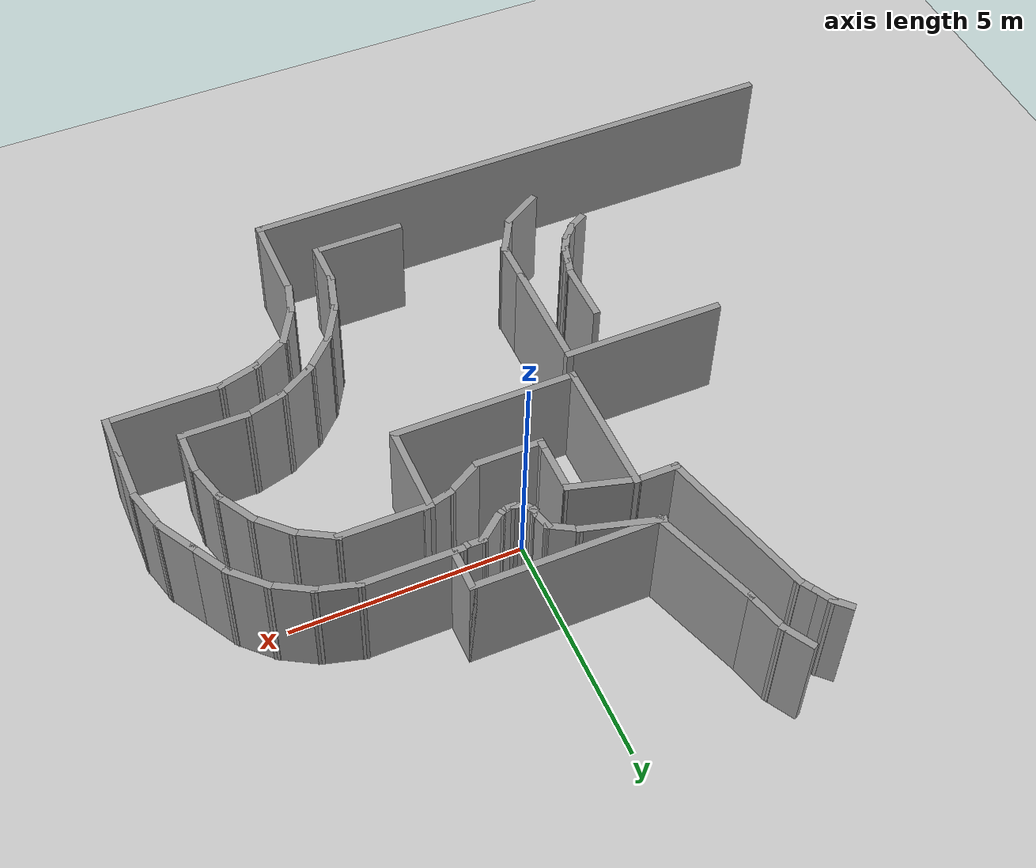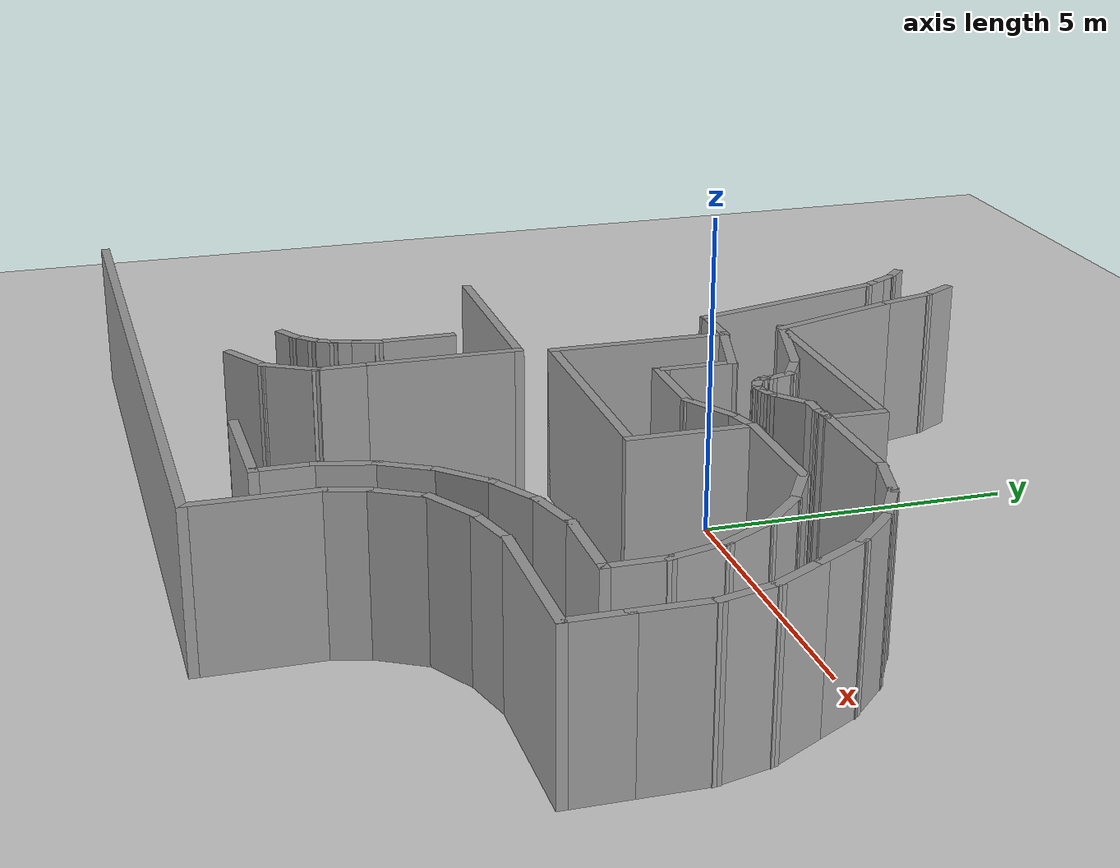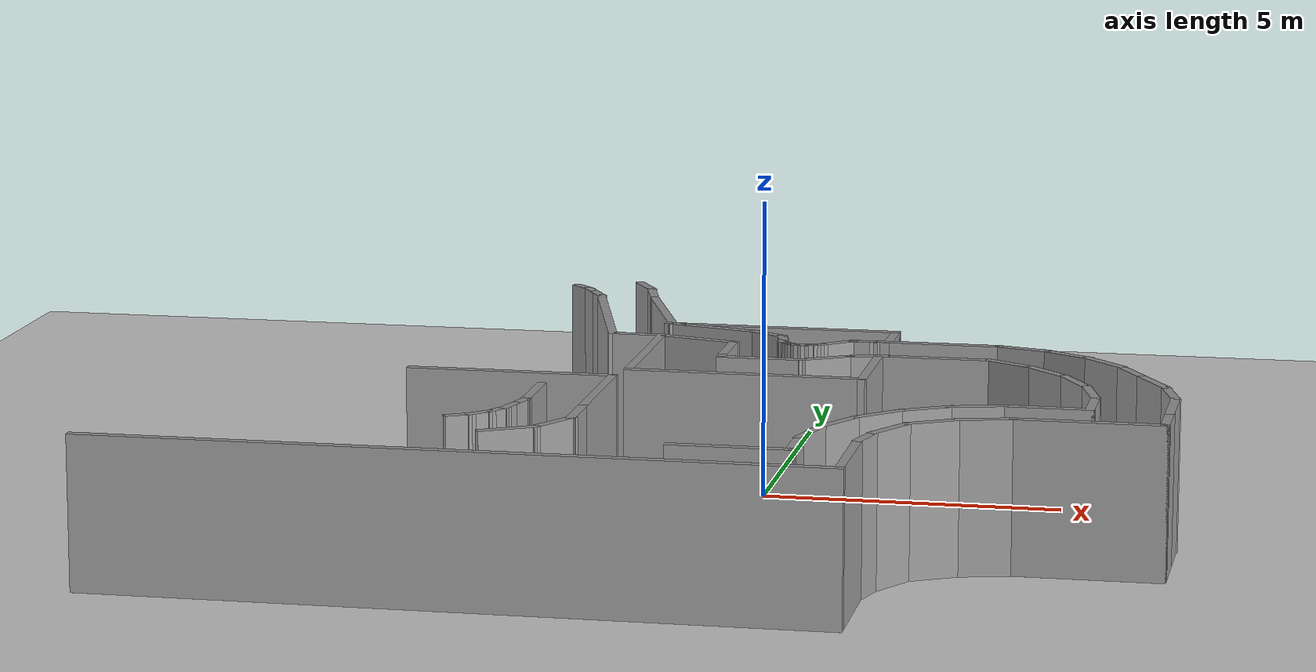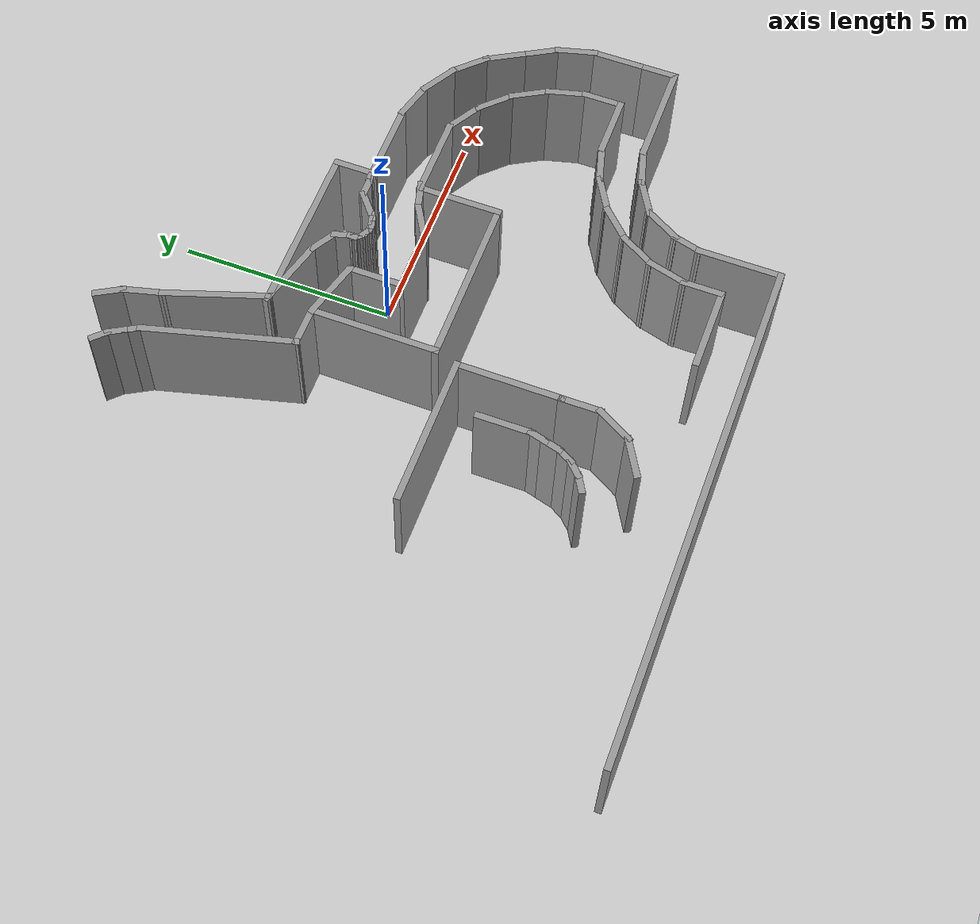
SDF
<sdf version="1.7">
 <world name="default">
  <model name="ground_plane">
   <static>1</static>
   <link name="link">
    <collision name="collision">
     <geometry><plane><normal>0 0 1</normal><size>100 100</size></plane></geometry>
     <surface><friction><ode><mu>100</mu><mu2>50</mu2></ode></friction></surface>
    </collision>
    <visual name="visual">
     <cast_shadows>0</cast_shadows>
     <geometry><plane><normal>0 0 1</normal><size>100 100</size></plane></geometry>
     <material>
      <script><uri>file://media/materials/scripts/gazebo.material</uri><name>Gazebo/Grey</name></script>
     </material>
    </visual>
   </link>
  </model>
  <model name="labirinth">
   <pose>-1.55942 0.15521 0 0 -0 0</pose>
   <link name="Wall_108">
    <collision name="Wall_108_Collision">
     <geometry><box><size>0.75 0.15 2.5</size></box></geometry>
     <pose>0 0 1.25 0 -0 0</pose>
    </collision>
    <visual name="Wall_108_Visual">
     <pose>0 0 1.25 0 -0 0</pose>
     <geometry><box><size>0.75 0.15 2.5</size></box></geometry>
     <material>
      <script><uri>file://media/materials/scripts/gazebo.material</uri><name>Gazebo/Grey</name></script>
      <ambient>1 1 1 1</ambient>
     </material>
     <meta><layer>0</layer></meta>
    </visual>
    <pose>-1.46149 5.03794 0 0 -0 -1.0472</pose>
   </link>
   <link name="Wall_109">
    <collision name="Wall_109_Collision">
     <geometry><box><size>1 0.15 2.5</size></box></geometry>
     <pose>0 0 1.25 0 -0 0</pose>
    </collision>
    <visual name="Wall_109_Visual">
     <pose>0 0 1.25 0 -0 0</pose>
     <geometry><box><size>1 0.15 2.5</size></box></geometry>
     <material>
      <script><uri>file://media/materials/scripts/gazebo.material</uri><name>Gazebo/Grey</name></script>
      <ambient>1 1 1 1</ambient>
     </material>
     <meta><layer>0</layer></meta>
    </visual>
    <pose>-1.20149 4.36761 0 0 -0 -1.309</pose>
   </link>
   <link name="Wall_11">
    <collision name="Wall_11_Collision">
     <geometry><box><size>1 0.15 2.5</size></box></geometry>
     <pose>0 0 1.25 0 -0 0</pose>
    </collision>
    <visual name="Wall_11_Visual">
     <pose>0 0 1.25 0 -0 0</pose>
     <geometry><box><size>1 0.15 2.5</size></box></geometry>
     <material>
      <script><uri>file://media/materials/scripts/gazebo.material</uri><name>Gazebo/Grey</name></script>
      <ambient>1 1 1 1</ambient>
     </material>
     <meta><layer>0</layer></meta>
    </visual>
    <pose>5.71748 -0.43771 0 0 -0 -0.523599</pose>
   </link>
   <link name="Wall_110">
    <collision name="Wall_110_Collision">
     <geometry><box><size>2.45465 0.15 2.5</size></box></geometry>
     <pose>0 0 1.25 0 -0 0</pose>
    </collision>
    <visual name="Wall_110_Visual">
     <pose>0 0 1.25 0 -0 0</pose>
     <geometry><box><size>2.45465 0.15 2.5</size></box></geometry>
     <material>
      <script><uri>file://media/materials/scripts/gazebo.material</uri><name>Gazebo/Grey</name></script>
      <ambient>1 1 1 1</ambient>
     </material>
     <meta><layer>0</layer></meta>
    </visual>
    <pose>-0.721037 2.86594 0 0 -0 -1.2435</pose>
   </link>
   <link name="Wall_112">
    <collision name="Wall_112_Collision">
     <geometry><box><size>3 0.15 2.5</size></box></geometry>
     <pose>0 0 1.25 0 -0 0</pose>
    </collision>
    <visual name="Wall_112_Visual">
     <pose>0 0 1.25 0 -0 0</pose>
     <geometry><box><size>3 0.15 2.5</size></box></geometry>
     <material>
      <script><uri>file://media/materials/scripts/gazebo.material</uri><name>Gazebo/Grey</name></script>
      <ambient>1 1 1 1</ambient>
     </material>
     <meta><layer>0</layer></meta>
    </visual>
    <pose>-0.350577 -0.65021 0 0 -0 1.5708</pose>
   </link>
   <link name="Wall_113">
    <collision name="Wall_113_Collision">
     <geometry><box><size>1 0.15 2.5</size></box></geometry>
     <pose>0 0 1.25 0 -0 0</pose>
    </collision>
    <visual name="Wall_113_Visual">
     <pose>0 0 1.25 0 -0 0</pose>
     <geometry><box><size>1 0.15 2.5</size></box></geometry>
     <material>
      <script><uri>file://media/materials/scripts/gazebo.material</uri><name>Gazebo/Grey</name></script>
      <ambient>1 1 1 1</ambient>
     </material>
     <meta><layer>0</layer></meta>
    </visual>
    <pose>-0.775577 0.77479 0 0 -0 3.14159</pose>
   </link>
   <link name="Wall_114">
    <collision name="Wall_114_Collision">
     <geometry><box><size>3.5 0.15 2.5</size></box></geometry>
     <pose>0 0 1.25 0 -0 0</pose>
    </collision>
    <visual name="Wall_114_Visual">
     <pose>0 0 1.25 0 -0 0</pose>
     <geometry><box><size>3.5 0.15 2.5</size></box></geometry>
     <material>
      <script><uri>file://media/materials/scripts/gazebo.material</uri><name>Gazebo/Grey</name></script>
      <ambient>1 1 1 1</ambient>
     </material>
     <meta><layer>0</layer></meta>
    </visual>
    <pose>-1.6341 2.39272 0 0 -0 1.8326</pose>
   </link>
   <link name="Wall_115">
    <collision name="Wall_115_Collision">
     <geometry><box><size>0.5 0.15 2.5</size></box></geometry>
     <pose>0 0 1.25 0 -0 0</pose>
    </collision>
    <visual name="Wall_115_Visual">
     <pose>0 0 1.25 0 -0 0</pose>
     <geometry><box><size>0.5 0.15 2.5</size></box></geometry>
     <material>
      <script><uri>file://media/materials/scripts/gazebo.material</uri><name>Gazebo/Grey</name></script>
      <ambient>1 1 1 1</ambient>
     </material>
     <meta><layer>0</layer></meta>
    </visual>
    <pose>-2.15512 4.1622 0 0 -0 2.0944</pose>
   </link>
   <link name="Wall_116">
    <collision name="Wall_116_Collision">
     <geometry><box><size>0.5 0.15 2.5</size></box></geometry>
     <pose>0 0 1.25 0 -0 0</pose>
    </collision>
    <visual name="Wall_116_Visual">
     <pose>0 0 1.25 0 -0 0</pose>
     <geometry><box><size>0.5 0.15 2.5</size></box></geometry>
     <material>
      <script><uri>file://media/materials/scripts/gazebo.material</uri><name>Gazebo/Grey</name></script>
      <ambient>1 1 1 1</ambient>
     </material>
     <meta><layer>0</layer></meta>
    </visual>
    <pose>-2.33012 4.4653 0 0 -0 2.0944</pose>
   </link>
   <link name="Wall_117">
    <collision name="Wall_117_Collision">
     <geometry><box><size>0.5 0.15 2.5</size></box></geometry>
     <pose>0 0 1.25 0 -0 0</pose>
    </collision>
    <visual name="Wall_117_Visual">
     <pose>0 0 1.25 0 -0 0</pose>
     <geometry><box><size>0.5 0.15 2.5</size></box></geometry>
     <material>
      <script><uri>file://media/materials/scripts/gazebo.material</uri><name>Gazebo/Grey</name></script>
      <ambient>1 1 1 1</ambient>
     </material>
     <meta><layer>0</layer></meta>
    </visual>
    <pose>-2.54136 4.7406 0 0 -0 2.35619</pose>
   </link>
   <link name="Wall_12">
    <collision name="Wall_12_Collision">
     <geometry><box><size>1 0.15 2.5</size></box></geometry>
     <pose>0 0 1.25 0 -0 0</pose>
    </collision>
    <visual name="Wall_12_Visual">
     <pose>0 0 1.25 0 -0 0</pose>
     <geometry><box><size>1 0.15 2.5</size></box></geometry>
     <material>
      <script><uri>file://media/materials/scripts/gazebo.material</uri><name>Gazebo/Grey</name></script>
      <ambient>1 1 1 1</ambient>
     </material>
     <meta><layer>0</layer></meta>
    </visual>
    <pose>6.38607 -0.95073 0 0 -0 -0.785398</pose>
   </link>
   <link name="Wall_13">
    <collision name="Wall_13_Collision">
     <geometry><box><size>1 0.15 2.5</size></box></geometry>
     <pose>0 0 1.25 0 -0 0</pose>
    </collision>
    <visual name="Wall_13_Visual">
     <pose>0 0 1.25 0 -0 0</pose>
     <geometry><box><size>1 0.15 2.5</size></box></geometry>
     <material>
      <script><uri>file://media/materials/scripts/gazebo.material</uri><name>Gazebo/Grey</name></script>
      <ambient>1 1 1 1</ambient>
     </material>
     <meta><layer>0</layer></meta>
    </visual>
    <pose>6.89909 -1.61931 0 0 -0 -1.0472</pose>
   </link>
   <link name="Wall_14">
    <collision name="Wall_14_Collision">
     <geometry><box><size>1 0.15 2.5</size></box></geometry>
     <pose>0 0 1.25 0 -0 0</pose>
    </collision>
    <visual name="Wall_14_Visual">
     <pose>0 0 1.25 0 -0 0</pose>
     <geometry><box><size>1 0.15 2.5</size></box></geometry>
     <material>
      <script><uri>file://media/materials/scripts/gazebo.material</uri><name>Gazebo/Grey</name></script>
      <ambient>1 1 1 1</ambient>
     </material>
     <meta><layer>0</layer></meta>
    </visual>
    <pose>7.22158 -2.39789 0 0 -0 -1.309</pose>
   </link>
   <link name="Wall_15">
    <collision name="Wall_15_Collision">
     <geometry><box><size>1 0.15 2.5</size></box></geometry>
     <pose>0 0 1.25 0 -0 0</pose>
    </collision>
    <visual name="Wall_15_Visual">
     <pose>0 0 1.25 0 -0 0</pose>
     <geometry><box><size>1 0.15 2.5</size></box></geometry>
     <material>
      <script><uri>file://media/materials/scripts/gazebo.material</uri><name>Gazebo/Grey</name></script>
      <ambient>1 1 1 1</ambient>
     </material>
     <meta><layer>0</layer></meta>
    </visual>
    <pose>7.33158 -3.23341 0 0 -0 -1.5708</pose>
   </link>
   <link name="Wall_16">
    <collision name="Wall_16_Collision">
     <geometry><box><size>1.5 0.15 2.5</size></box></geometry>
     <pose>0 0 1.25 0 -0 0</pose>
    </collision>
    <visual name="Wall_16_Visual">
     <pose>0 0 1.25 0 -0 0</pose>
     <geometry><box><size>1.5 0.15 2.5</size></box></geometry>
     <material>
      <script><uri>file://media/materials/scripts/gazebo.material</uri><name>Gazebo/Grey</name></script>
      <ambient>1 1 1 1</ambient>
     </material>
     <meta><layer>0</layer></meta>
    </visual>
    <pose>6.65658 -3.65841 0 0 -0 3.14159</pose>
   </link>
   <link name="Wall_17">
    <collision name="Wall_17_Collision">
     <geometry><box><size>1 0.15 2.5</size></box></geometry>
     <pose>0 0 1.25 0 -0 0</pose>
    </collision>
    <visual name="Wall_17_Visual">
     <pose>0 0 1.25 0 -0 0</pose>
     <geometry><box><size>1 0.15 2.5</size></box></geometry>
     <material>
      <script><uri>file://media/materials/scripts/gazebo.material</uri><name>Gazebo/Grey</name></script>
      <ambient>1 1 1 1</ambient>
     </material>
     <meta><layer>0</layer></meta>
    </visual>
    <pose>5.57106 -3.76841 0 0 -0 -2.87979</pose>
   </link>
   <link name="Wall_18">
    <collision name="Wall_18_Collision">
     <geometry><box><size>1 0.15 2.5</size></box></geometry>
     <pose>0 0 1.25 0 -0 0</pose>
    </collision>
    <visual name="Wall_18_Visual">
     <pose>0 0 1.25 0 -0 0</pose>
     <geometry><box><size>1 0.15 2.5</size></box></geometry>
     <material>
      <script><uri>file://media/materials/scripts/gazebo.material</uri><name>Gazebo/Grey</name></script>
      <ambient>1 1 1 1</ambient>
     </material>
     <meta><layer>0</layer></meta>
    </visual>
    <pose>4.79248 -4.09091 0 0 -0 -2.61799</pose>
   </link>
   <link name="Wall_19">
    <collision name="Wall_19_Collision">
     <geometry><box><size>1 0.15 2.5</size></box></geometry>
     <pose>0 0 1.25 0 -0 0</pose>
    </collision>
    <visual name="Wall_19_Visual">
     <pose>0 0 1.25 0 -0 0</pose>
     <geometry><box><size>1 0.15 2.5</size></box></geometry>
     <material>
      <script><uri>file://media/materials/scripts/gazebo.material</uri><name>Gazebo/Grey</name></script>
      <ambient>1 1 1 1</ambient>
     </material>
     <meta><layer>0</layer></meta>
    </visual>
    <pose>4.1239 -4.60393 0 0 -0 -2.35619</pose>
   </link>
   <link name="Wall_2">
    <collision name="Wall_2_Collision">
     <geometry><box><size>4 0.15 2.5</size></box></geometry>
     <pose>0 0 1.25 0 -0 0</pose>
    </collision>
    <visual name="Wall_2_Visual">
     <pose>0 0 1.25 0 -0 0</pose>
     <geometry><box><size>4 0.15 2.5</size></box></geometry>
     <material>
      <script><uri>file://media/materials/scripts/gazebo.material</uri><name>Gazebo/Grey</name></script>
      <ambient>1 1 1 1</ambient>
     </material>
     <meta><layer>0</layer></meta>
    </visual>
    <pose>1.57442 1.77479 0 0 -0 0</pose>
   </link>
   <link name="Wall_20">
    <collision name="Wall_20_Collision">
     <geometry><box><size>1 0.15 2.5</size></box></geometry>
     <pose>0 0 1.25 0 -0 0</pose>
    </collision>
    <visual name="Wall_20_Visual">
     <pose>0 0 1.25 0 -0 0</pose>
     <geometry><box><size>1 0.15 2.5</size></box></geometry>
     <material>
      <script><uri>file://media/materials/scripts/gazebo.material</uri><name>Gazebo/Grey</name></script>
      <ambient>1 1 1 1</ambient>
     </material>
     <meta><layer>0</layer></meta>
    </visual>
    <pose>3.61088 -5.27251 0 0 -0 -2.0944</pose>
   </link>
   <link name="Wall_21">
    <collision name="Wall_21_Collision">
     <geometry><box><size>1 0.15 2.5</size></box></geometry>
     <pose>0 0 1.25 0 -0 0</pose>
    </collision>
    <visual name="Wall_21_Visual">
     <pose>0 0 1.25 0 -0 0</pose>
     <geometry><box><size>1 0.15 2.5</size></box></geometry>
     <material>
      <script><uri>file://media/materials/scripts/gazebo.material</uri><name>Gazebo/Grey</name></script>
      <ambient>1 1 1 1</ambient>
     </material>
     <meta><layer>0</layer></meta>
    </visual>
    <pose>3.28838 -6.05109 0 0 -0 -1.8326</pose>
   </link>
   <link name="Wall_22">
    <collision name="Wall_22_Collision">
     <geometry><box><size>1 0.15 2.5</size></box></geometry>
     <pose>0 0 1.25 0 -0 0</pose>
    </collision>
    <visual name="Wall_22_Visual">
     <pose>0 0 1.25 0 -0 0</pose>
     <geometry><box><size>1 0.15 2.5</size></box></geometry>
     <material>
      <script><uri>file://media/materials/scripts/gazebo.material</uri><name>Gazebo/Grey</name></script>
      <ambient>1 1 1 1</ambient>
     </material>
     <meta><layer>0</layer></meta>
    </visual>
    <pose>3.17839 -6.8866 0 0 -0 -1.5708</pose>
   </link>
   <link name="Wall_23">
    <collision name="Wall_23_Collision">
     <geometry><box><size>2 0.15 2.5</size></box></geometry>
     <pose>0 0 1.25 0 -0 0</pose>
    </collision>
    <visual name="Wall_23_Visual">
     <pose>0 0 1.25 0 -0 0</pose>
     <geometry><box><size>2 0.15 2.5</size></box></geometry>
     <material>
      <script><uri>file://media/materials/scripts/gazebo.material</uri><name>Gazebo/Grey</name></script>
      <ambient>1 1 1 1</ambient>
     </material>
     <meta><layer>0</layer></meta>
    </visual>
    <pose>2.25339 -7.3116 0 0 -0 3.14159</pose>
   </link>
   <link name="Wall_27">
    <collision name="Wall_27_Collision">
     <geometry><box><size>1 0.15 2.5</size></box></geometry>
     <pose>0 0 1.25 0 -0 0</pose>
    </collision>
    <visual name="Wall_27_Visual">
     <pose>0 0 1.25 0 -0 0</pose>
     <geometry><box><size>1 0.15 2.5</size></box></geometry>
     <material>
      <script><uri>file://media/materials/scripts/gazebo.material</uri><name>Gazebo/Grey</name></script>
      <ambient>1 1 1 1</ambient>
     </material>
     <meta><layer>0</layer></meta>
    </visual>
    <pose>-1.30355 -6.7491 0 0 -0 0.523599</pose>
   </link>
   <link name="Wall_28">
    <collision name="Wall_28_Collision">
     <geometry><box><size>1 0.15 2.5</size></box></geometry>
     <pose>0 0 1.25 0 -0 0</pose>
    </collision>
    <visual name="Wall_28_Visual">
     <pose>0 0 1.25 0 -0 0</pose>
     <geometry><box><size>1 0.15 2.5</size></box></geometry>
     <material>
      <script><uri>file://media/materials/scripts/gazebo.material</uri><name>Gazebo/Grey</name></script>
      <ambient>1 1 1 1</ambient>
     </material>
     <meta><layer>0</layer></meta>
    </visual>
    <pose>-0.722992 -6.16854 0 0 -0 1.0472</pose>
   </link>
   <link name="Wall_29">
    <collision name="Wall_29_Collision">
     <geometry><box><size>1 0.15 2.5</size></box></geometry>
     <pose>0 0 1.25 0 -0 0</pose>
    </collision>
    <visual name="Wall_29_Visual">
     <pose>0 0 1.25 0 -0 0</pose>
     <geometry><box><size>1 0.15 2.5</size></box></geometry>
     <material>
      <script><uri>file://media/materials/scripts/gazebo.material</uri><name>Gazebo/Grey</name></script>
      <ambient>1 1 1 1</ambient>
     </material>
     <meta><layer>0</layer></meta>
    </visual>
    <pose>-0.510492 -5.37548 0 0 -0 1.5708</pose>
   </link>
   <link name="Wall_3">
    <collision name="Wall_3_Collision">
     <geometry><box><size>1 0.15 2.5</size></box></geometry>
     <pose>0 0 1.25 0 -0 0</pose>
    </collision>
    <visual name="Wall_3_Visual">
     <pose>0 0 1.25 0 -0 0</pose>
     <geometry><box><size>1 0.15 2.5</size></box></geometry>
     <material>
      <script><uri>file://media/materials/scripts/gazebo.material</uri><name>Gazebo/Grey</name></script>
      <ambient>1 1 1 1</ambient>
     </material>
     <meta><layer>0</layer></meta>
    </visual>
    <pose>3.49942 1.34979 0 0 -0 -1.5708</pose>
   </link>
   <link name="Wall_30">
    <collision name="Wall_30_Collision">
     <geometry><box><size>2.5 0.15 2.5</size></box></geometry>
     <pose>0 0 1.25 0 -0 0</pose>
    </collision>
    <visual name="Wall_30_Visual">
     <pose>0 0 1.25 0 -0 0</pose>
     <geometry><box><size>2.5 0.15 2.5</size></box></geometry>
     <material>
      <script><uri>file://media/materials/scripts/gazebo.material</uri><name>Gazebo/Grey</name></script>
      <ambient>1 1 1 1</ambient>
     </material>
     <meta><layer>0</layer></meta>
    </visual>
    <pose>-0.510492 -3.77548 0 0 -0 1.5708</pose>
   </link>
   <link name="Wall_31">
    <collision name="Wall_31_Collision">
     <geometry><box><size>3.5 0.15 2.5</size></box></geometry>
     <pose>0 0 1.25 0 -0 0</pose>
    </collision>
    <visual name="Wall_31_Visual">
     <pose>0 0 1.25 0 -0 0</pose>
     <geometry><box><size>3.5 0.15 2.5</size></box></geometry>
     <material>
      <script><uri>file://media/materials/scripts/gazebo.material</uri><name>Gazebo/Grey</name></script>
      <ambient>1 1 1 1</ambient>
     </material>
     <meta><layer>0</layer></meta>
    </visual>
    <pose>-2.18549 -2.60048 0 0 -0 3.14159</pose>
   </link>
   <link name="Wall_37">
    <collision name="Wall_37_Collision">
     <geometry><box><size>1 0.15 2.5</size></box></geometry>
     <pose>0 0 1.25 0 -0 0</pose>
    </collision>
    <visual name="Wall_37_Visual">
     <pose>0 0 1.25 0 -0 0</pose>
     <geometry><box><size>1 0.15 2.5</size></box></geometry>
     <material>
      <script><uri>file://media/materials/scripts/gazebo.material</uri><name>Gazebo/Grey</name></script>
      <ambient>1 1 1 1</ambient>
     </material>
     <meta><layer>0</layer></meta>
    </visual>
    <pose>5.75994 0.814792 0 0 -0 -0.261799</pose>
   </link>
   <link name="Wall_38">
    <collision name="Wall_38_Collision">
     <geometry><box><size>1 0.15 2.5</size></box></geometry>
     <pose>0 0 1.25 0 -0 0</pose>
    </collision>
    <visual name="Wall_38_Visual">
     <pose>0 0 1.25 0 -0 0</pose>
     <geometry><box><size>1 0.15 2.5</size></box></geometry>
     <material>
      <script><uri>file://media/materials/scripts/gazebo.material</uri><name>Gazebo/Grey</name></script>
      <ambient>1 1 1 1</ambient>
     </material>
     <meta><layer>0</layer></meta>
    </visual>
    <pose>6.53852 0.492294 0 0 -0 -0.523599</pose>
   </link>
   <link name="Wall_39">
    <collision name="Wall_39_Collision">
     <geometry><box><size>1 0.15 2.5</size></box></geometry>
     <pose>0 0 1.25 0 -0 0</pose>
    </collision>
    <visual name="Wall_39_Visual">
     <pose>0 0 1.25 0 -0 0</pose>
     <geometry><box><size>1 0.15 2.5</size></box></geometry>
     <material>
      <script><uri>file://media/materials/scripts/gazebo.material</uri><name>Gazebo/Grey</name></script>
      <ambient>1 1 1 1</ambient>
     </material>
     <meta><layer>0</layer></meta>
    </visual>
    <pose>7.2071 -0.020726 0 0 -0 -0.785398</pose>
   </link>
   <link name="Wall_4">
    <collision name="Wall_4_Collision">
     <geometry><box><size>2 0.15 2.5</size></box></geometry>
     <pose>0 0 1.25 0 -0 0</pose>
    </collision>
    <visual name="Wall_4_Visual">
     <pose>0 0 1.25 0 -0 0</pose>
     <geometry><box><size>2 0.15 2.5</size></box></geometry>
     <material>
      <script><uri>file://media/materials/scripts/gazebo.material</uri><name>Gazebo/Grey</name></script>
      <ambient>1 1 1 1</ambient>
     </material>
     <meta><layer>0</layer></meta>
    </visual>
    <pose>4.42442 0.924791 0 0 -0 0</pose>
   </link>
   <link name="Wall_43">
    <collision name="Wall_43_Collision">
     <geometry><box><size>1 0.15 2.5</size></box></geometry>
     <pose>0 0 1.25 0 -0 0</pose>
    </collision>
    <visual name="Wall_43_Visual">
     <pose>0 0 1.25 0 -0 0</pose>
     <geometry><box><size>1 0.15 2.5</size></box></geometry>
     <material>
      <script><uri>file://media/materials/scripts/gazebo.material</uri><name>Gazebo/Grey</name></script>
      <ambient>1 1 1 1</ambient>
     </material>
     <meta><layer>0</layer></meta>
    </visual>
    <pose>7.72012 -0.689307 0 0 -0 -1.0472</pose>
   </link>
   <link name="Wall_44">
    <collision name="Wall_44_Collision">
     <geometry><box><size>1 0.15 2.5</size></box></geometry>
     <pose>0 0 1.25 0 -0 0</pose>
    </collision>
    <visual name="Wall_44_Visual">
     <pose>0 0 1.25 0 -0 0</pose>
     <geometry><box><size>1 0.15 2.5</size></box></geometry>
     <material>
      <script><uri>file://media/materials/scripts/gazebo.material</uri><name>Gazebo/Grey</name></script>
      <ambient>1 1 1 1</ambient>
     </material>
     <meta><layer>0</layer></meta>
    </visual>
    <pose>8.14512 -1.42543 0 0 -0 -1.0472</pose>
   </link>
   <link name="Wall_45">
    <collision name="Wall_45_Collision">
     <geometry><box><size>1 0.15 2.5</size></box></geometry>
     <pose>0 0 1.25 0 -0 0</pose>
    </collision>
    <visual name="Wall_45_Visual">
     <pose>0 0 1.25 0 -0 0</pose>
     <geometry><box><size>1 0.15 2.5</size></box></geometry>
     <material>
      <script><uri>file://media/materials/scripts/gazebo.material</uri><name>Gazebo/Grey</name></script>
      <ambient>1 1 1 1</ambient>
     </material>
     <meta><layer>0</layer></meta>
    </visual>
    <pose>8.46762 -2.20401 0 0 -0 -1.309</pose>
   </link>
   <link name="Wall_46">
    <collision name="Wall_46_Collision">
     <geometry><box><size>1.25 0.15 2.5</size></box></geometry>
     <pose>0 0 1.25 0 -0 0</pose>
    </collision>
    <visual name="Wall_46_Visual">
     <pose>0 0 1.25 0 -0 0</pose>
     <geometry><box><size>1.25 0.15 2.5</size></box></geometry>
     <material>
      <script><uri>file://media/materials/scripts/gazebo.material</uri><name>Gazebo/Grey</name></script>
      <ambient>1 1 1 1</ambient>
     </material>
     <meta><layer>0</layer></meta>
    </visual>
    <pose>8.57762 -3.16453 0 0 -0 -1.5708</pose>
   </link>
   <link name="Wall_48">
    <collision name="Wall_48_Collision">
     <geometry><box><size>1 0.15 2.5</size></box></geometry>
     <pose>0 0 1.25 0 -0 0</pose>
    </collision>
    <visual name="Wall_48_Visual">
     <pose>0 0 1.25 0 -0 0</pose>
     <geometry><box><size>1 0.15 2.5</size></box></geometry>
     <material>
      <script><uri>file://media/materials/scripts/gazebo.material</uri><name>Gazebo/Grey</name></script>
      <ambient>1 1 1 1</ambient>
     </material>
     <meta><layer>0</layer></meta>
    </visual>
    <pose>8.57762 -4.13953 0 0 -0 -1.5708</pose>
   </link>
   <link name="Wall_49">
    <collision name="Wall_49_Collision">
     <geometry><box><size>2.5 0.15 2.5</size></box></geometry>
     <pose>0 0 1.25 0 -0 0</pose>
    </collision>
    <visual name="Wall_49_Visual">
     <pose>0 0 1.25 0 -0 0</pose>
     <geometry><box><size>2.5 0.15 2.5</size></box></geometry>
     <material>
      <script><uri>file://media/materials/scripts/gazebo.material</uri><name>Gazebo/Grey</name></script>
      <ambient>1 1 1 1</ambient>
     </material>
     <meta><layer>0</layer></meta>
    </visual>
    <pose>7.40262 -4.56453 0 0 -0 3.14159</pose>
   </link>
   <link name="Wall_50">
    <collision name="Wall_50_Collision">
     <geometry><box><size>1 0.15 2.5</size></box></geometry>
     <pose>0 0 1.25 0 -0 0</pose>
    </collision>
    <visual name="Wall_50_Visual">
     <pose>0 0 1.25 0 -0 0</pose>
     <geometry><box><size>1 0.15 2.5</size></box></geometry>
     <material>
      <script><uri>file://media/materials/scripts/gazebo.material</uri><name>Gazebo/Grey</name></script>
      <ambient>1 1 1 1</ambient>
     </material>
     <meta><layer>0</layer></meta>
    </visual>
    <pose>5.8171 -4.67453 0 0 -0 -2.87979</pose>
   </link>
   <link name="Wall_51">
    <collision name="Wall_51_Collision">
     <geometry><box><size>1 0.15 2.5</size></box></geometry>
     <pose>0 0 1.25 0 -0 0</pose>
    </collision>
    <visual name="Wall_51_Visual">
     <pose>0 0 1.25 0 -0 0</pose>
     <geometry><box><size>1 0.15 2.5</size></box></geometry>
     <material>
      <script><uri>file://media/materials/scripts/gazebo.material</uri><name>Gazebo/Grey</name></script>
      <ambient>1 1 1 1</ambient>
     </material>
     <meta><layer>0</layer></meta>
    </visual>
    <pose>5.03852 -4.99702 0 0 -0 -2.61799</pose>
   </link>
   <link name="Wall_52">
    <collision name="Wall_52_Collision">
     <geometry><box><size>1 0.15 2.5</size></box></geometry>
     <pose>0 0 1.25 0 -0 0</pose>
    </collision>
    <visual name="Wall_52_Visual">
     <pose>0 0 1.25 0 -0 0</pose>
     <geometry><box><size>1 0.15 2.5</size></box></geometry>
     <material>
      <script><uri>file://media/materials/scripts/gazebo.material</uri><name>Gazebo/Grey</name></script>
      <ambient>1 1 1 1</ambient>
     </material>
     <meta><layer>0</layer></meta>
    </visual>
    <pose>4.45796 -5.57758 0 0 -0 -2.0944</pose>
   </link>
   <link name="Wall_53">
    <collision name="Wall_53_Collision">
     <geometry><box><size>0.75 0.15 2.5</size></box></geometry>
     <pose>0 0 1.25 0 -0 0</pose>
    </collision>
    <visual name="Wall_53_Visual">
     <pose>0 0 1.25 0 -0 0</pose>
     <geometry><box><size>0.75 0.15 2.5</size></box></geometry>
     <material>
      <script><uri>file://media/materials/scripts/gazebo.material</uri><name>Gazebo/Grey</name></script>
      <ambient>1 1 1 1</ambient>
     </material>
     <meta><layer>0</layer></meta>
    </visual>
    <pose>4.16782 -6.23542 0 0 -0 -1.8326</pose>
   </link>
   <link name="Wall_54">
    <collision name="Wall_54_Collision">
     <geometry><box><size>2 0.15 2.5</size></box></geometry>
     <pose>0 0 1.25 0 -0 0</pose>
    </collision>
    <visual name="Wall_54_Visual">
     <pose>0 0 1.25 0 -0 0</pose>
     <geometry><box><size>2 0.15 2.5</size></box></geometry>
     <material>
      <script><uri>file://media/materials/scripts/gazebo.material</uri><name>Gazebo/Grey</name></script>
      <ambient>1 1 1 1</ambient>
     </material>
     <meta><layer>0</layer></meta>
    </visual>
    <pose>4.09017 -7.4502 0 0 -0 -1.5708</pose>
   </link>
   <link name="Wall_55">
    <collision name="Wall_55_Collision">
     <geometry><box><size>12 0.15 2.5</size></box></geometry>
     <pose>0 0 1.25 0 -0 0</pose>
    </collision>
    <visual name="Wall_55_Visual">
     <pose>0 0 1.25 0 -0 0</pose>
     <geometry><box><size>12 0.15 2.5</size></box></geometry>
     <material>
      <script><uri>file://media/materials/scripts/gazebo.material</uri><name>Gazebo/Grey</name></script>
      <ambient>1 1 1 1</ambient>
     </material>
     <meta><layer>0</layer></meta>
    </visual>
    <pose>-1.83483 -8.3752 0 0 -0 3.14159</pose>
   </link>
   <link name="Wall_58">
    <collision name="Wall_58_Collision">
     <geometry><box><size>0.5 0.15 2.5</size></box></geometry>
     <pose>0 0 1.25 0 -0 0</pose>
    </collision>
    <visual name="Wall_58_Visual">
     <pose>0 0 1.25 0 -0 0</pose>
     <geometry><box><size>0.5 0.15 2.5</size></box></geometry>
     <material>
      <script><uri>file://media/materials/scripts/gazebo.material</uri><name>Gazebo/Grey</name></script>
      <ambient>1 1 1 1</ambient>
     </material>
     <meta><layer>0</layer></meta>
    </visual>
    <pose>-2.25828 -5.9377 0 0 -0 0.523599</pose>
   </link>
   <link name="Wall_59">
    <collision name="Wall_59_Collision">
     <geometry><box><size>0.5 0.15 2.5</size></box></geometry>
     <pose>0 0 1.25 0 -0 0</pose>
    </collision>
    <visual name="Wall_59_Visual">
     <pose>0 0 1.25 0 -0 0</pose>
     <geometry><box><size>0.5 0.15 2.5</size></box></geometry>
     <material>
      <script><uri>file://media/materials/scripts/gazebo.material</uri><name>Gazebo/Grey</name></script>
      <ambient>1 1 1 1</ambient>
     </material>
     <meta><layer>0</layer></meta>
    </visual>
    <pose>-1.98298 -5.72646 0 0 -0 0.785398</pose>
   </link>
   <link name="Wall_6">
    <collision name="Wall_6_Collision">
     <geometry><box><size>4 0.15 2.5</size></box></geometry>
     <pose>0 0 1.25 0 -0 0</pose>
    </collision>
    <visual name="Wall_6_Visual">
     <pose>0 0 1.25 0 -0 0</pose>
     <geometry><box><size>4 0.15 2.5</size></box></geometry>
     <material>
      <script><uri>file://media/materials/scripts/gazebo.material</uri><name>Gazebo/Grey</name></script>
      <ambient>1 1 1 1</ambient>
     </material>
     <meta><layer>0</layer></meta>
    </visual>
    <pose>1.57442 -2.07521 0 0 -0 0</pose>
   </link>
   <link name="Wall_60">
    <collision name="Wall_60_Collision">
     <geometry><box><size>0.5 0.15 2.5</size></box></geometry>
     <pose>0 0 1.25 0 -0 0</pose>
    </collision>
    <visual name="Wall_60_Visual">
     <pose>0 0 1.25 0 -0 0</pose>
     <geometry><box><size>0.5 0.15 2.5</size></box></geometry>
     <material>
      <script><uri>file://media/materials/scripts/gazebo.material</uri><name>Gazebo/Grey</name></script>
      <ambient>1 1 1 1</ambient>
     </material>
     <meta><layer>0</layer></meta>
    </visual>
    <pose>-1.77174 -5.45116 0 0 -0 1.0472</pose>
   </link>
   <link name="Wall_61">
    <collision name="Wall_61_Collision">
     <geometry><box><size>0.5 0.15 2.5</size></box></geometry>
     <pose>0 0 1.25 0 -0 0</pose>
    </collision>
    <visual name="Wall_61_Visual">
     <pose>0 0 1.25 0 -0 0</pose>
     <geometry><box><size>0.5 0.15 2.5</size></box></geometry>
     <material>
      <script><uri>file://media/materials/scripts/gazebo.material</uri><name>Gazebo/Grey</name></script>
      <ambient>1 1 1 1</ambient>
     </material>
     <meta><layer>0</layer></meta>
    </visual>
    <pose>-1.63894 -5.13057 0 0 -0 1.309</pose>
   </link>
   <link name="Wall_62">
    <collision name="Wall_62_Collision">
     <geometry><box><size>0.5 0.15 2.5</size></box></geometry>
     <pose>0 0 1.25 0 -0 0</pose>
    </collision>
    <visual name="Wall_62_Visual">
     <pose>0 0 1.25 0 -0 0</pose>
     <geometry><box><size>0.5 0.15 2.5</size></box></geometry>
     <material>
      <script><uri>file://media/materials/scripts/gazebo.material</uri><name>Gazebo/Grey</name></script>
      <ambient>1 1 1 1</ambient>
     </material>
     <meta><layer>0</layer></meta>
    </visual>
    <pose>-1.54835 -4.79249 0 0 -0 1.309</pose>
   </link>
   <link name="Wall_63">
    <collision name="Wall_63_Collision">
     <geometry><box><size>1.323 0.15 2.5</size></box></geometry>
     <pose>0 0 1.25 0 -0 0</pose>
    </collision>
    <visual name="Wall_63_Visual">
     <pose>0 0 1.25 0 -0 0</pose>
     <geometry><box><size>1.323 0.15 2.5</size></box></geometry>
     <material>
      <script><uri>file://media/materials/scripts/gazebo.material</uri><name>Gazebo/Grey</name></script>
      <ambient>1 1 1 1</ambient>
     </material>
     <meta><layer>0</layer></meta>
    </visual>
    <pose>-1.50678 -4.03697 0 0 -0 1.57713</pose>
   </link>
   <link name="Wall_7">
    <collision name="Wall_7_Collision">
     <geometry><box><size>2 0.15 2.5</size></box></geometry>
     <pose>0 0 1.25 0 -0 0</pose>
    </collision>
    <visual name="Wall_7_Visual">
     <pose>0 0 1.25 0 -0 0</pose>
     <geometry><box><size>2 0.15 2.5</size></box></geometry>
     <material>
      <script><uri>file://media/materials/scripts/gazebo.material</uri><name>Gazebo/Grey</name></script>
      <ambient>1 1 1 1</ambient>
     </material>
     <meta><layer>0</layer></meta>
    </visual>
    <pose>3.49942 -1.15021 0 0 -0 1.5708</pose>
   </link>
   <link name="Wall_8">
    <collision name="Wall_8_Collision">
     <geometry><box><size>2 0.15 2.5</size></box></geometry>
     <pose>0 0 1.25 0 -0 0</pose>
    </collision>
    <visual name="Wall_8_Visual">
     <pose>0 0 1.25 0 -0 0</pose>
     <geometry><box><size>2 0.15 2.5</size></box></geometry>
     <material>
      <script><uri>file://media/materials/scripts/gazebo.material</uri><name>Gazebo/Grey</name></script>
      <ambient>1 1 1 1</ambient>
     </material>
     <meta><layer>0</layer></meta>
    </visual>
    <pose>4.42442 -0.22521 0 0 -0 0</pose>
   </link>
   <static>1</static>
  </model>
  <model name="labirinth_startpoint_edit">
   <pose>0.039839 0.654999 0 0 -0 0</pose>
   <link name="Wall_10">
    <collision name="Wall_10_Collision">
     <geometry><box><size>1.5 0.15 2.5</size></box></geometry>
     <pose>0 0 1.25 0 -0 0</pose>
    </collision>
    <visual name="Wall_10_Visual">
     <pose>0 0 1.25 0 -0 0</pose>
     <geometry><box><size>1.5 0.15 2.5</size></box></geometry>
     <material>
      <script><uri>file://media/materials/scripts/gazebo.material</uri><name>Gazebo/Grey</name></script>
      <ambient>1 1 1 1</ambient>
     </material>
     <meta><layer>0</layer></meta>
    </visual>
    <pose>0.019161 -1.28441 0 0 -0 0</pose>
   </link>
   <link name="Wall_11">
    <collision name="Wall_11_Collision">
     <geometry><box><size>1 0.15 2.5</size></box></geometry>
     <pose>0 0 1.25 0 -0 0</pose>
    </collision>
    <visual name="Wall_11_Visual">
     <pose>0 0 1.25 0 -0 0</pose>
     <geometry><box><size>1 0.15 2.5</size></box></geometry>
     <material>
      <script><uri>file://media/materials/scripts/gazebo.material</uri><name>Gazebo/Grey</name></script>
      <ambient>1 1 1 1</ambient>
     </material>
     <meta><layer>0</layer></meta>
    </visual>
    <pose>1.06222 -1.07191 0 0 -0 0.523599</pose>
   </link>
   <link name="Wall_12">
    <collision name="Wall_12_Collision">
     <geometry><box><size>0.75 0.15 2.5</size></box></geometry>
     <pose>0 0 1.25 0 -0 0</pose>
    </collision>
    <visual name="Wall_12_Visual">
     <pose>0 0 1.25 0 -0 0</pose>
     <geometry><box><size>0.75 0.15 2.5</size></box></geometry>
     <material>
      <script><uri>file://media/materials/scripts/gazebo.material</uri><name>Gazebo/Grey</name></script>
      <ambient>1 1 1 1</ambient>
     </material>
     <meta><layer>0</layer></meta>
    </visual>
    <pose>1.72006 -0.781759 0 0 -0 0.261799</pose>
   </link>
   <link name="Wall_15">
    <collision name="Wall_15_Collision">
     <geometry><box><size>1.75 0.15 2.5</size></box></geometry>
     <pose>0 0 1.25 0 -0 0</pose>
    </collision>
    <visual name="Wall_15_Visual">
     <pose>0 0 1.25 0 -0 0</pose>
     <geometry><box><size>1.75 0.15 2.5</size></box></geometry>
     <material>
      <script><uri>file://media/materials/scripts/gazebo.material</uri><name>Gazebo/Grey</name></script>
      <ambient>1 1 1 1</ambient>
     </material>
     <meta><layer>0</layer></meta>
    </visual>
    <pose>-1.2371 1.08795 0 0 -0 -0.261799</pose>
   </link>
   <link name="Wall_16">
    <collision name="Wall_16_Collision">
     <geometry><box><size>0.75 0.15 2.5</size></box></geometry>
     <pose>0 0 1.25 0 -0 0</pose>
    </collision>
    <visual name="Wall_16_Visual">
     <pose>0 0 1.25 0 -0 0</pose>
     <geometry><box><size>0.75 0.15 2.5</size></box></geometry>
     <material>
      <script><uri>file://media/materials/scripts/gazebo.material</uri><name>Gazebo/Grey</name></script>
      <ambient>1 1 1 1</ambient>
     </material>
     <meta><layer>0</layer></meta>
    </visual>
    <pose>-0.20455 0.73089 0 0 -0 -0.523599</pose>
   </link>
   <link name="Wall_17">
    <collision name="Wall_17_Collision">
     <geometry><box><size>0.5 0.15 2.5</size></box></geometry>
     <pose>0 0 1.25 0 -0 0</pose>
    </collision>
    <visual name="Wall_17_Visual">
     <pose>0 0 1.25 0 -0 0</pose>
     <geometry><box><size>0.5 0.15 2.5</size></box></geometry>
     <material>
      <script><uri>file://media/materials/scripts/gazebo.material</uri><name>Gazebo/Grey</name></script>
      <ambient>1 1 1 1</ambient>
     </material>
     <meta><layer>0</layer></meta>
    </visual>
    <pose>0.100551 0.411853 0 0 -0 -1.309</pose>
   </link>
   <link name="Wall_18">
    <collision name="Wall_18_Collision">
     <geometry><box><size>0.25 0.15 2.5</size></box></geometry>
     <pose>0 0 1.25 0 -0 0</pose>
    </collision>
    <visual name="Wall_18_Visual">
     <pose>0 0 1.25 0 -0 0</pose>
     <geometry><box><size>0.25 0.15 2.5</size></box></geometry>
     <material>
      <script><uri>file://media/materials/scripts/gazebo.material</uri><name>Gazebo/Grey</name></script>
      <ambient>1 1 1 1</ambient>
     </material>
     <meta><layer>0</layer></meta>
    </visual>
    <pose>0.145845 0.192816 0 0 -0 -1.5708</pose>
   </link>
   <link name="Wall_19">
    <collision name="Wall_19_Collision">
     <geometry><box><size>0.25 0.15 2.5</size></box></geometry>
     <pose>0 0 1.25 0 -0 0</pose>
    </collision>
    <visual name="Wall_19_Visual">
     <pose>0 0 1.25 0 -0 0</pose>
     <geometry><box><size>0.25 0.15 2.5</size></box></geometry>
     <material>
      <script><uri>file://media/materials/scripts/gazebo.material</uri><name>Gazebo/Grey</name></script>
      <ambient>1 1 1 1</ambient>
     </material>
     <meta><layer>0</layer></meta>
    </visual>
    <pose>0.170845 0.099515 0 0 -0 -1.0472</pose>
   </link>
   <link name="Wall_2">
    <collision name="Wall_2_Collision">
     <geometry><box><size>0.5 0.15 2.5</size></box></geometry>
     <pose>0 0 1.25 0 -0 0</pose>
    </collision>
    <visual name="Wall_2_Visual">
     <pose>0 0 1.25 0 -0 0</pose>
     <geometry><box><size>0.5 0.15 2.5</size></box></geometry>
     <material>
      <script><uri>file://media/materials/scripts/gazebo.material</uri><name>Gazebo/Grey</name></script>
      <ambient>1 1 1 1</ambient>
     </material>
     <meta><layer>0</layer></meta>
    </visual>
    <pose>1.47101 0.397957 0 0 -0 0</pose>
   </link>
   <link name="Wall_20">
    <collision name="Wall_20_Collision">
     <geometry><box><size>0.25 0.15 2.5</size></box></geometry>
     <pose>0 0 1.25 0 -0 0</pose>
    </collision>
    <visual name="Wall_20_Visual">
     <pose>0 0 1.25 0 -0 0</pose>
     <geometry><box><size>0.25 0.15 2.5</size></box></geometry>
     <material>
      <script><uri>file://media/materials/scripts/gazebo.material</uri><name>Gazebo/Grey</name></script>
      <ambient>1 1 1 1</ambient>
     </material>
     <meta><layer>0</layer></meta>
    </visual>
    <pose>0.2312 0.020859 0 0 -0 -0.785398</pose>
   </link>
   <link name="Wall_21">
    <collision name="Wall_21_Collision">
     <geometry><box><size>0.25 0.15 2.5</size></box></geometry>
     <pose>0 0 1.25 0 -0 0</pose>
    </collision>
    <visual name="Wall_21_Visual">
     <pose>0 0 1.25 0 -0 0</pose>
     <geometry><box><size>0.25 0.15 2.5</size></box></geometry>
     <material>
      <script><uri>file://media/materials/scripts/gazebo.material</uri><name>Gazebo/Grey</name></script>
      <ambient>1 1 1 1</ambient>
     </material>
     <meta><layer>0</layer></meta>
    </visual>
    <pose>0.309857 -0.039497 0 0 -0 -0.523599</pose>
   </link>
   <link name="Wall_22">
    <collision name="Wall_22_Collision">
     <geometry><box><size>0.25 0.15 2.5</size></box></geometry>
     <pose>0 0 1.25 0 -0 0</pose>
    </collision>
    <visual name="Wall_22_Visual">
     <pose>0 0 1.25 0 -0 0</pose>
     <geometry><box><size>0.25 0.15 2.5</size></box></geometry>
     <material>
      <script><uri>file://media/materials/scripts/gazebo.material</uri><name>Gazebo/Grey</name></script>
      <ambient>1 1 1 1</ambient>
     </material>
     <meta><layer>0</layer></meta>
    </visual>
    <pose>0.401454 -0.077438 0 0 -0 -0.261799</pose>
   </link>
   <link name="Wall_23">
    <collision name="Wall_23_Collision">
     <geometry><box><size>0.25 0.15 2.5</size></box></geometry>
     <pose>0 0 1.25 0 -0 0</pose>
    </collision>
    <visual name="Wall_23_Visual">
     <pose>0 0 1.25 0 -0 0</pose>
     <geometry><box><size>0.25 0.15 2.5</size></box></geometry>
     <material>
      <script><uri>file://media/materials/scripts/gazebo.material</uri><name>Gazebo/Grey</name></script>
      <ambient>1 1 1 1</ambient>
     </material>
     <meta><layer>0</layer></meta>
    </visual>
    <pose>0.49975 -0.090379 0 0 -0 0</pose>
   </link>
   <link name="Wall_24">
    <collision name="Wall_24_Collision">
     <geometry><box><size>0.25 0.15 2.5</size></box></geometry>
     <pose>0 0 1.25 0 -0 0</pose>
    </collision>
    <visual name="Wall_24_Visual">
     <pose>0 0 1.25 0 -0 0</pose>
     <geometry><box><size>0.25 0.15 2.5</size></box></geometry>
     <material>
      <script><uri>file://media/materials/scripts/gazebo.material</uri><name>Gazebo/Grey</name></script>
      <ambient>1 1 1 1</ambient>
     </material>
     <meta><layer>0</layer></meta>
    </visual>
    <pose>0.598047 -0.077438 0 0 -0 0.261799</pose>
   </link>
   <link name="Wall_25">
    <collision name="Wall_25_Collision">
     <geometry><box><size>0.25 0.15 2.5</size></box></geometry>
     <pose>0 0 1.25 0 -0 0</pose>
    </collision>
    <visual name="Wall_25_Visual">
     <pose>0 0 1.25 0 -0 0</pose>
     <geometry><box><size>0.25 0.15 2.5</size></box></geometry>
     <material>
      <script><uri>file://media/materials/scripts/gazebo.material</uri><name>Gazebo/Grey</name></script>
      <ambient>1 1 1 1</ambient>
     </material>
     <meta><layer>0</layer></meta>
    </visual>
    <pose>0.694639 -0.051556 0 0 -0 0.261799</pose>
   </link>
   <link name="Wall_26">
    <collision name="Wall_26_Collision">
     <geometry><box><size>0.25 0.15 2.5</size></box></geometry>
     <pose>0 0 1.25 0 -0 0</pose>
    </collision>
    <visual name="Wall_26_Visual">
     <pose>0 0 1.25 0 -0 0</pose>
     <geometry><box><size>0.25 0.15 2.5</size></box></geometry>
     <material>
      <script><uri>file://media/materials/scripts/gazebo.material</uri><name>Gazebo/Grey</name></script>
      <ambient>1 1 1 1</ambient>
     </material>
     <meta><layer>0</layer></meta>
    </visual>
    <pose>0.786237 -0.013615 0 0 -0 0.523599</pose>
   </link>
   <link name="Wall_27">
    <collision name="Wall_27_Collision">
     <geometry><box><size>0.755835 0.15 2.5</size></box></geometry>
     <pose>0 0 1.25 0 -0 0</pose>
    </collision>
    <visual name="Wall_27_Visual">
     <pose>0 0 1.25 0 -0 0</pose>
     <geometry><box><size>0.755835 0.15 2.5</size></box></geometry>
     <material>
      <script><uri>file://media/materials/scripts/gazebo.material</uri><name>Gazebo/Grey</name></script>
      <ambient>1 1 1 1</ambient>
     </material>
     <meta><layer>0</layer></meta>
    </visual>
    <pose>1.06278 0.204671 0 0 -0 0.692003</pose>
   </link>
   <link name="Wall_3">
    <collision name="Wall_3_Collision">
     <geometry><box><size>0.25 0.15 2.5</size></box></geometry>
     <pose>0 0 1.25 0 -0 0</pose>
    </collision>
    <visual name="Wall_3_Visual">
     <pose>0 0 1.25 0 -0 0</pose>
     <geometry><box><size>0.25 0.15 2.5</size></box></geometry>
     <material>
      <script><uri>file://media/materials/scripts/gazebo.material</uri><name>Gazebo/Grey</name></script>
      <ambient>1 1 1 1</ambient>
     </material>
     <meta><layer>0</layer></meta>
    </visual>
    <pose>1.69431 0.410898 0 0 -0 0.261799</pose>
   </link>
   <link name="Wall_4">
    <collision name="Wall_4_Collision">
     <geometry><box><size>0.25 0.15 2.5</size></box></geometry>
     <pose>0 0 1.25 0 -0 0</pose>
    </collision>
    <visual name="Wall_4_Visual">
     <pose>0 0 1.25 0 -0 0</pose>
     <geometry><box><size>0.25 0.15 2.5</size></box></geometry>
     <material>
      <script><uri>file://media/materials/scripts/gazebo.material</uri><name>Gazebo/Grey</name></script>
      <ambient>1 1 1 1</ambient>
     </material>
     <meta><layer>0</layer></meta>
    </visual>
    <pose>1.79261 0.423839 0 0 -0 0</pose>
   </link>
   <link name="Wall_7">
    <collision name="Wall_7_Collision">
     <geometry><box><size>1.5 0.15 2.5</size></box></geometry>
     <pose>0 0 1.25 0 -0 0</pose>
    </collision>
    <visual name="Wall_7_Visual">
     <pose>0 0 1.25 0 -0 0</pose>
     <geometry><box><size>1.5 0.15 2.5</size></box></geometry>
     <material>
      <script><uri>file://media/materials/scripts/gazebo.material</uri><name>Gazebo/Grey</name></script>
      <ambient>1 1 1 1</ambient>
     </material>
     <meta><layer>0</layer></meta>
    </visual>
    <pose>-1.30784 0.090298 0 0 -0 -0.261799</pose>
   </link>
   <link name="Wall_8">
    <collision name="Wall_8_Collision">
     <geometry><box><size>1.25 0.15 2.5</size></box></geometry>
     <pose>0 0 1.25 0 -0 0</pose>
    </collision>
    <visual name="Wall_8_Visual">
     <pose>0 0 1.25 0 -0 0</pose>
     <geometry><box><size>1.25 0.15 2.5</size></box></geometry>
     <material>
      <script><uri>file://media/materials/scripts/gazebo.material</uri><name>Gazebo/Grey</name></script>
      <ambient>1 1 1 1</ambient>
     </material>
     <meta><layer>0</layer></meta>
    </visual>
    <pose>-0.655839 -0.634405 0 0 -0 -1.5708</pose>
   </link>
   <link name="Wall_9">
    <collision name="Wall_9_Collision">
     <geometry><box><size>0.25 0.15 2.5</size></box></geometry>
     <pose>0 0 1.25 0 -0 0</pose>
    </collision>
    <visual name="Wall_9_Visual">
     <pose>0 0 1.25 0 -0 0</pose>
     <geometry><box><size>0.25 0.15 2.5</size></box></geometry>
     <material>
      <script><uri>file://media/materials/scripts/gazebo.material</uri><name>Gazebo/Grey</name></script>
      <ambient>1 1 1 1</ambient>
     </material>
     <meta><layer>0</layer></meta>
    </visual>
    <pose>-0.655839 -1.2344 0 0 -0 -1.5708</pose>
   </link>
   <static>1</static>
  </model>
 </world>
</sdf>
